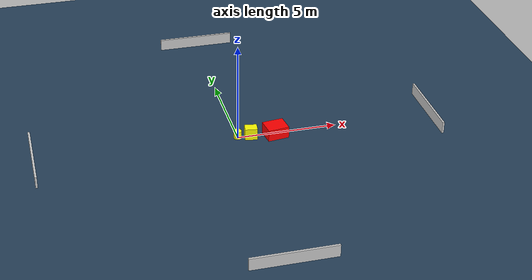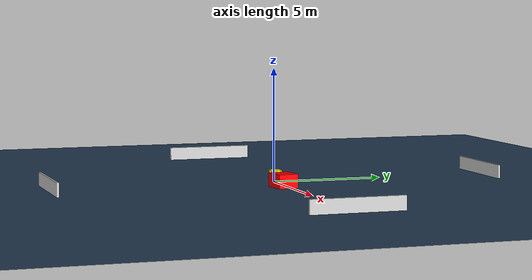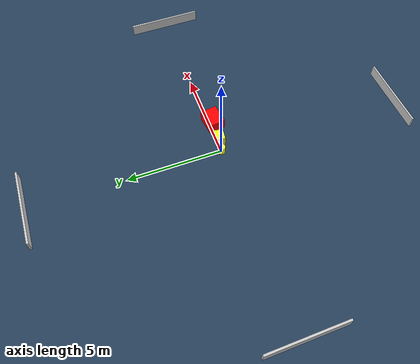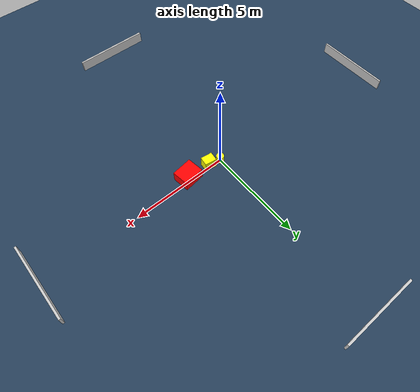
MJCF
<?xml version="1.0" ?>
<mujoco model="generated_environment">
  <option timestep="0.01" integrator="RK4" cone="elliptic"/>
  <default>
    <geom density="1"/>
  </default>
  <asset>
    <texture builtin="gradient" height="3072" name="skybox" rgb1="0.3 0.5 0.7" rgb2="0 0 0" type="skybox" width="512"/>
    <texture builtin="checker" height="300" name="groundplane" rgb1="0.2 0.3 0.4" rgb2="0.1 0.2 0.3" type="2d" width="300"/>
    <material name="groundplane" reflectance="0.2" texrepeat="5 5" texture="groundplane"/>
  </asset>
  <worldbody>
    <light dir="0 0 -1" directional="true" pos="0 0 1.5"/>
    <geom condim="3" friction="0.5 0.005 0.001" material="groundplane" name="floor" pos="0 0 0" size="0 0 0.05" type="plane"/>
    <body name="walls">
      <geom name="wall_1" condim="4" pos="-10.0 0.0 0.3" rgba="0.800000011920929 0.800000011920929 0.800000011920929 1.0" size="0.05 2.0 0.3" type="box"/>
      <geom name="wall_2" condim="4" pos="10.0 0.0 0.3" rgba="0.800000011920929 0.800000011920929 0.800000011920929 1.0" size="0.05 2.0 0.3" type="box"/>
      <geom name="wall_3" condim="4" pos="0.0 -10.0 0.3" rgba="0.800000011920929 0.800000011920929 0.800000011920929 1.0" size="2.0 0.05 0.3" type="box"/>
      <geom name="wall_4" condim="4" pos="0.0 10.0 0.3" rgba="0.800000011920929 0.800000011920929 0.800000011920929 1.0" size="2.0 0.05 0.3" type="box"/>
    </body>
    <body name="robot">
      <joint name="joint_x" type="slide" pos="0 0 0" axis="1 0 0"/>
      <joint name="joint_y" type="slide" pos="0 0 0" axis="0 1 0"/>
      <geom name="robot" type="cylinder" pos="0.0 0.0 0.2" size="0.2 0.2 0.0" mass="5.0" friction="1.0 0.005 0.0001" condim="4" rgba="1.0 1.0 0.0 1.0"/>
    </body>
    <body name="obstacle_1_movable">
      <geom name="obstacle_1_movable" condim="4" pos="0.6382586853331802 -0.13410884214461483 0.3" euler="0 0 172.46091253661587" friction="0.0 0.005 0.001" rgba="1.0 1.0 0.0 1.0" size="0.30472424408405213 0.23649748119474762 0.3" type="box" mass="0.1"/>
      <joint type="free"/>
    </body>
    <body name="obstacle_2_static">
      <geom name="obstacle_2_static" condim="4" pos="1.8730990975137354 -0.2048447373955439 0.3" euler="0 0 7.404660388932243" friction="0.0 0.005 0.001" rgba="1.0 0.0 0.0 1.0" size="0.5361314023745825 0.4417829625222479 0.3" type="box"/>
    </body>
  </worldbody>
  <actuator>
    <motor name="actuator_x" joint="joint_x" gear="1" ctrlrange="-1 1"/>
    <motor name="actuator_y" joint="joint_y" gear="1" ctrlrange="-1 1"/>
  </actuator>
</mujoco>
